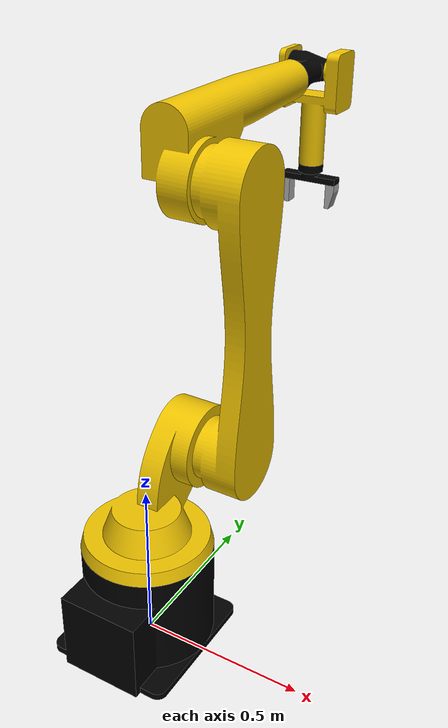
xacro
<?xml version="1.0" ?>
<robot name="majager" xmlns:xacro="http://www.ros.org/wiki/xacro">

<xacro:include filename="$(find majager_description)/urdf/materials.xacro" />
<xacro:include filename="$(find majager_description)/urdf/majager.gazebo" />
<xacro:include filename="$(find majager_description)/urdf/links_joints.xacro" />
<xacro:include filename="$(find majager_description)/urdf/robot_parameters.xacro" />

<!-- World frame (for Gazebo) -->
<link name="world"/>

<!-- Arm fixed to world frame  -->
<joint name="world__base_link" type="fixed">
  <parent link="world"/>
  <child link="base_link"/>
  <origin rpy="0 0 0" xyz="0 0 0"/>
</joint>

<xacro:m_link_mesh name="base_link" color="Black"
            masa_xyz="-7.089415568373423e-17 -0.022734689380917134 0.15849931820776944"
            origin_rpy="0 0 0" origin_xyz="0 0 0"
            mass="351.2471728207797"
            ixx="7.803246" ixy="0" ixz="0"
            iyy="6.469342" iyz="0"
            izz="7.933037"
            meshfile="package://majager_description/meshes/base_link.stl"
            meshscale="0.001 0.001 0.001" />

<xacro:m_joint name="Base_to_Link1" type="revolute"
         axis_xyz="0 0 1"
         origin_rpy="0 0 0" origin_xyz="0 0 0.33"
         parent="base_link" child="Link1_1"
         limit_e="100" limit_l="-3.141593" limit_u="3.141593" limit_v="100" />

<xacro:m_link_mesh name="Link1_1" color="Yellow"
            masa_xyz="0.010990144273109063 0.0882068365110577 0.13577480191631508"
            origin_rpy="0 0 0" origin_xyz="0.0 0.0 -0.33"
            mass="120.52547968640361"
            ixx="3.160703" ixy="-0.14808" ixz="-0.151302"
            iyy="1.945221" iyz="-1.098862"
            izz="2.215367"
            meshfile="package://majager_description/meshes/Link1_1.stl"
            meshscale="0.001 0.001 0.001" />

<xacro:m_joint name="Link1_to_Link2" type="revolute"
         axis_xyz="1.0 -0.0 -0.0"
         origin_rpy="0 0 0" origin_xyz="0.09 0.2 0.25"
         parent="Link1_1" child="Link2_1"
         limit_e="100" limit_l="-2.792527" limit_u="1.570796" limit_v="100" />

<xacro:m_link_mesh name="Link2_1" color="Yellow"
            masa_xyz="0.09461813085962972 1.712519015484304e-14 0.39991695949421147"
            origin_rpy="0 0 0" origin_xyz="-0.09 -0.2 -0.58"
            mass="140.82400607636134"
            ixx="16.907224" ixy="0" ixz="0"
            iyy="16.692266" iyz="0"
            izz="0.659521"
            meshfile="package://majager_description/meshes/Link2_1.stl"
            meshscale="0.001 0.001 0.001" />

<xacro:m_joint name="Link2_to_Link3" type="revolute"
         axis_xyz="-1.0 -0.0 -0.0"
         origin_rpy="0 0 0" origin_xyz="0.0 0.0 0.8"
         parent="Link2_1" child="Link3_1"
         limit_e="100" limit_l="-3.490659" limit_u="1.570796" limit_v="100" />

<xacro:m_link_mesh name="Link3_1" color="Yellow"
            masa_xyz="-0.08214790877720178 0.17667383033522477 0.09071058462146264"
            origin_rpy="0 0 0" origin_xyz="-0.09 -0.2 -1.38"
            mass="113.14016041688751"
            ixx="4.813544" ixy="0.160871" ixz="0.096164"
            iyy="0.718651" iyz="-0.721581"
            izz="4.447232"
            meshfile="package://majager_description/meshes/Link3_1.stl"
            meshscale="0.001 0.001 0.001" />

<xacro:m_joint name="Link3_to_Link4" type="revolute"
         axis_xyz="-0.0 1.0 0.0"
         origin_rpy="0 0 0" origin_xyz="-0.09 0.61 0.13"
         parent="Link3_1" child="Link4_1"
         limit_e="100" limit_l="-3.141593" limit_u="3.141593" limit_v="100" />

<xacro:m_link_mesh name="Link4_1" color="Black"
            masa_xyz="-0.01381923652259904 0.1126422845962809 1.5576813499063036e-06"
            origin_rpy="0 0 0" origin_xyz="-0.0 -0.81 -1.51"
            mass="12.036896395207224"
            ixx="0.061572" ixy="0.010471" ixz="-0.0"
            iyy="0.018205" iyz="-1e-06"
            izz="0.067201"
            meshfile="package://majager_description/meshes/Link4_1.stl"
            meshscale="0.001 0.001 0.001" />

<xacro:m_joint name="Link4_to_Link5" type="revolute"
         axis_xyz="1.0 0.0 0.0"
         origin_rpy="0 0 0" origin_xyz="0.04 0.175 0.0"
         parent="Link4_1" child="Link5_1"
         limit_e="100" limit_l="-0.523599" limit_u="3.665191" limit_v="100" />

<xacro:m_link_mesh name="Link5_1" color="Yellow"
            masa_xyz="-0.02715869025322588 -5.218048215738236e-15 -0.08759357763589937"
            origin_rpy="0 0 0" origin_xyz="-0.04 -0.985 -1.51"
            mass="18.83303077561953"
            ixx="0.167562" ixy="0" ixz="-0.016099"
            iyy="0.227483" iyz="0"
            izz="0.091889"
            meshfile="package://majager_description/meshes/Link5_1.stl"
            meshscale="0.001 0.001 0.001" />

<xacro:m_joint name="Link5_to_Link6" type="prismatic"
         axis_xyz="0.0 0.0 -1.0"
         origin_rpy="0 0 0" origin_xyz="-0.04 0.0 -0.15"
         parent="Link5_1" child="Link6_1"
         limit_e="100" limit_l="0.0" limit_u="0.11" limit_v="100" />

<xacro:m_link_mesh name="Link6_1" color="Black"
            masa_xyz="-1.462357275260921e-16 -8.215650382226158e-15 -0.10789050337311945"
            origin_rpy="0 0 0" origin_xyz="0.0 -0.985 -1.36"
            mass="2.9701696869512575"
            ixx="0.009725" ixy="0" ixz="0.0"
            iyy="0.009725" iyz="0"
            izz="0.001313"
            meshfile="package://majager_description/meshes/Link6_1.stl"
            meshscale="0.001 0.001 0.001" />

<xacro:m_joint name="Link6_to_Base_Gripper" type="revolute"
         axis_xyz="0.0 0.0 -1.0"
         origin_rpy="0 0 0" origin_xyz="0.0 0.0 -0.18"
         parent="Link6_1" child="Base_Gripper_1"
         limit_e="100" limit_l="-3.141593" limit_u="3.141593" limit_v="100" />

<xacro:m_link_mesh name="Base_Gripper_1" color="Black"
              masa_xyz="-1.309810703716444e-16 -8.215650382226158e-15 -0.014382845951966372"
              origin_rpy="0 0 0" origin_xyz="0.0 -0.985 -1.18"
              mass="1.1700579922254057"
              ixx="0.000268" ixy="0" ixz="0"
              iyy="0.003233" iyz="0"
              izz="1"
              meshfile="package://majager_description/meshes/Base_Gripper_1.stl"
              meshscale="0.001 0.001 0.001" />

<xacro:m_joint name="Base_Gripper_to_Gripper_Right" type="prismatic"
         axis_xyz="1.0 0.0 0.0"
         origin_rpy="0 0 0" origin_xyz="-0.09 0.0 -0.0225"
         parent="Base_Gripper_1" child="Gripper_Right_1"
         limit_e="100" limit_l="0.0" limit_u="0.065" limit_v="100" />

<xacro:m_link_mesh name="Gripper_Right_1" color="Grey"
            masa_xyz="0.012095808747128123 -2.786659791809143e-14 -0.03856287422397031"
            origin_rpy="0 0 0" origin_xyz="0.09 -0.985 -1.1575"
            mass="0.6554750004678966"
            ixx="0.00044" ixy="-0.0" ixz="3e-05"
            iyy="0.000397" iyz="-0.0"
            izz="0.000125"
            meshfile="package://majager_description/meshes/Gripper_Right_1.stl"
            meshscale="0.001 0.001 0.001" />

<xacro:m_joint name="Base_Gripper_to_Gripper_Left" type="prismatic"
         axis_xyz="-1.0 -0.0 -0.0"
         origin_rpy="0 0 0" origin_xyz="0.09 0.0 -0.0225"
         parent="Base_Gripper_1" child="Gripper_Left_1"
         limit_e="100" limit_l="0.00" limit_u="0.065" limit_v="100" />

<xacro:m_link_mesh name="Gripper_Left_1" color="Grey"
            masa_xyz="-0.012095808747128373 8.992806499463768e-15 -0.03856287422397009"
            origin_rpy="0 0 0" origin_xyz="-0.09 -0.985 -1.1575"
            mass="0.6554750004678964"
            ixx="0.00044" ixy="0" ixz="-3e-05"
            iyy="0.000397" iyz="0"
            izz="0.000125"
            meshfile="package://majager_description/meshes/Gripper_Left_1.stl"
            meshscale="0.001 0.001 0.001" />

</robot>

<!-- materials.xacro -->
<robot name="majager" xmlns:xacro="http://www.ros.org/wiki/xacro" >

<material name="silver">
  <color rgba="0.700 0.700 0.700 1.000"/>
</material>

<material name="Yellow">
  <color rgba="0.93 0.76 0.0 1.0"/>
</material>

<material name="Grey">
  <color rgba="0.7 0.7 0.7 1.0"/>
</material>

<material name="Black">
  <color rgba="0.0 0.0 0.0 1.0"/>
</material>

</robot>

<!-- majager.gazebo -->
<robot name="majager" xmlns:xacro="http://www.ros.org/wiki/xacro" >

<xacro:property name="body_color" value="Gazebo/Silver" />

<gazebo>
  <plugin name="control" filename="libgazebo_ros_control.so"/>
</gazebo>

<gazebo reference="base_link">
  <material>${body_color}</material>
  <mu1>0.2</mu1>
  <mu2>0.2</mu2>
  <selfCollide>true</selfCollide>
  <gravity>true</gravity>
</gazebo>

<gazebo reference="Link1_1">
  <material>${body_color}</material>
  <mu1>0.2</mu1>
  <mu2>0.2</mu2>
  <selfCollide>true</selfCollide>
</gazebo>

<gazebo reference="Link2_1">
  <material>${body_color}</material>
  <mu1>0.2</mu1>
  <mu2>0.2</mu2>
  <selfCollide>true</selfCollide>
</gazebo>

<gazebo reference="Link3_1">
  <material>${body_color}</material>
  <mu1>0.2</mu1>
  <mu2>0.2</mu2>
  <selfCollide>true</selfCollide>
</gazebo>

<gazebo reference="Link4_1">
  <material>${body_color}</material>
  <mu1>0.2</mu1>
  <mu2>0.2</mu2>
  <selfCollide>true</selfCollide>
</gazebo>

<gazebo reference="Link5_1">
  <material>${body_color}</material>
  <mu1>0.2</mu1>
  <mu2>0.2</mu2>
  <selfCollide>true</selfCollide>
</gazebo>

<gazebo reference="Link6_1">
  <material>${body_color}</material>
  <mu1>0.2</mu1>
  <mu2>0.2</mu2>
  <selfCollide>true</selfCollide>
</gazebo>

<gazebo reference="Base_Gripper_1">
  <material>${body_color}</material>
  <mu1>0.2</mu1>
  <mu2>0.2</mu2>
  <selfCollide>true</selfCollide>
</gazebo>

<gazebo reference="Gripper_Left_1">
  <material>Gazebo/White</material>
  <mu1>1.0</mu1>
  <mu2>1.0</mu2>
  <kp>1000000.0</kp>
  <kd>1.0</kd>
  <minDepth>0.001</minDepth>
</gazebo>

<gazebo reference="Gripper_Right_1">
  <material>Gazebo/White</material>
  <mu1>1.0</mu1>
  <mu2>1.0</mu2>
  <kp>1000000.0</kp>
  <kd>1.0</kd>
  <minDepth>0.001</minDepth>
</gazebo>

</robot>

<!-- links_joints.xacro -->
<robot xmlns:xacro="http://www.ros.org/wiki/xacro">

  <xacro:macro name="m_joint" params="name type axis_xyz origin_rpy origin_xyz parent child limit_e limit_l limit_u limit_v">
    <joint name="${name}" type="${type}">
      <axis xyz="${axis_xyz}" />
      <limit effort="${limit_e}" lower="${limit_l}" upper="${limit_u}" velocity="${limit_v}" />
      <origin rpy="${origin_rpy}" xyz="${origin_xyz}" />
      <parent link="${parent}" />
      <child link="${child}" />
    </joint>
    <transmission name="${name}_tran">
      <type>transmission_interface/SimpleTransmission</type>
      <joint name="${name}">
        <hardwareInterface>hardware_interface/EffortJointInterface</hardwareInterface>
      </joint>
      <actuator name="${name}_actr">
        <hardwareInterface>hardware_interface/EffortJointInterface</hardwareInterface>
        <mechanicalReduction>1</mechanicalReduction>
      </actuator>
    </transmission>
  </xacro:macro>

  <xacro:macro name="m_link_mesh" params="name color masa_xyz origin_xyz origin_rpy meshfile meshscale mass ixx ixy ixz iyy iyz izz">
    <link name="${name}">
      <inertial>
        <mass value="${mass}" />
        <origin rpy="${origin_rpy}" xyz="${masa_xyz}" />
        <inertia ixx="${ixx}" ixy="${ixy}" ixz="${ixz}" iyy="${iyy}" iyz="${iyz}" izz="${izz}" />
      </inertial>
      <collision>
        <origin rpy="${origin_rpy}" xyz="${origin_xyz}" />
        <geometry>
          <mesh filename="${meshfile}" scale="${meshscale}"/>
        </geometry>
      </collision>
      <visual>
        <origin rpy="${origin_rpy}" xyz="${origin_xyz}" />
        <geometry>
          <mesh filename="${meshfile}" scale="${meshscale}"/>
        </geometry>
        <material name="${color}"/>
      </visual>
    </link>
  </xacro:macro>

</robot>
